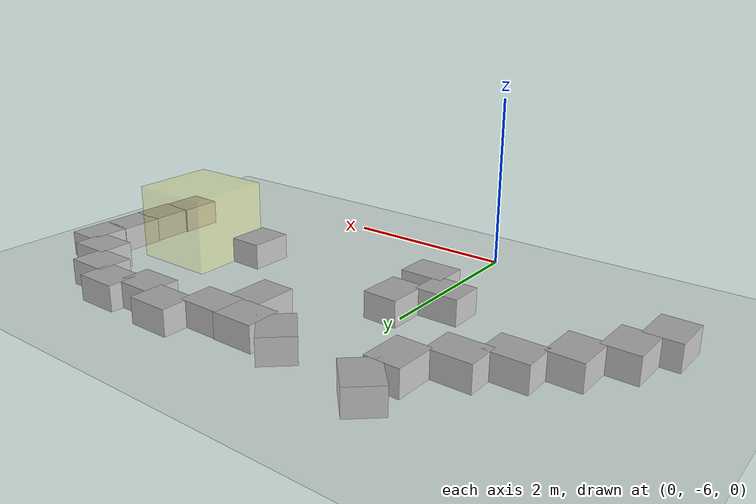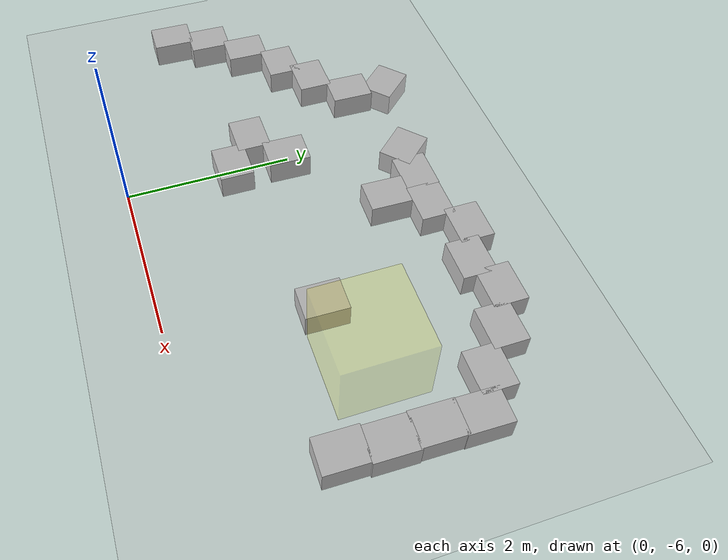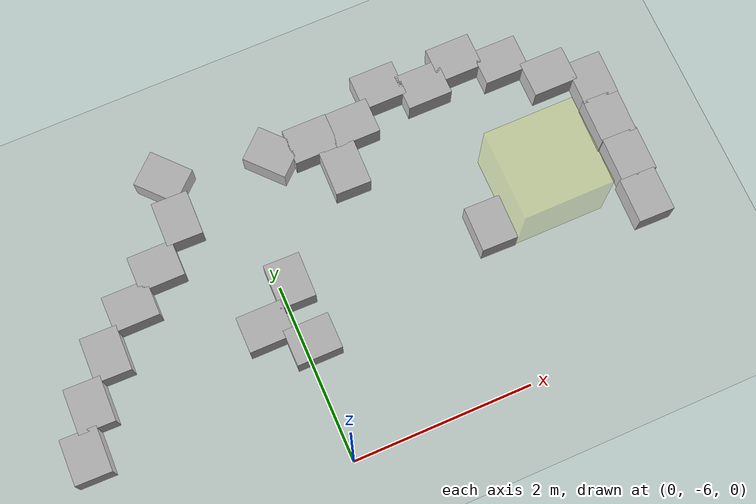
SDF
<sdf version="1.6">
 <world name="default">
  <model name="ground_plane">
   <static>1</static>
   <link name="link">
    <collision name="collision">
     <geometry><plane><normal>0 0 1</normal><size>100 100</size></plane></geometry>
     <surface>
      <contact><collide_bitmask>65535</collide_bitmask></contact>
      <friction><ode><mu>100</mu><mu2>50</mu2></ode></friction>
     </surface>
    </collision>
    <visual name="visual">
     <cast_shadows>0</cast_shadows>
     <geometry><plane><normal>0 0 1</normal><size>100 100</size></plane></geometry>
     <material>
      <script><uri>file://media/materials/scripts/gazebo.material</uri><name>Gazebo/Grey</name></script>
     </material>
    </visual>
   </link>
   <pose>0.215037 0.234206 0 0 -0 0</pose>
  </model>
  <model name="RegionEventBox_clone_0_clone">
   <static>1</static>
   <pose>3.01485 -4.05142 0 0 -0 0</pose>
   <link name="link">
    <visual name="visual">
     <transparency>0.75</transparency>
     <geometry><box><size>1 1 1.75</size></box></geometry>
     <material>
      <script><uri>file://media/materials/scripts/gazebo.material</uri><name>Gazebo/Yellow</name></script>
     </material>
    </visual>
   </link>
   <plugin name="region_event_box" filename="libRegionEventBoxPlugin.so">
    <event><name>model_in_region_event_box</name><type>inclusion</type><active>1</active></event>
   </plugin>
  </model>
  <model name="box_clone_3_clone_clone_clone_5">
   <link name="cardboard_box_clone::link">
    <inertial>
     <mass>2</mass>
     <inertia>
      <ixx>0.0416667</ixx>
      <ixy>0</ixy>
      <ixz>0</ixz>
      <iyy>0.0566667</iyy>
      <iyz>0</iyz>
      <izz>0.0683333</izz>
     </inertia>
    </inertial>
    <visual name="visual">
     <pose>0 0 -0.15 0 -0 0</pose>
     <geometry>
      <mesh><uri>model://cardboard_box/meshes/cardboard_box.dae</uri><scale>1.25932 1.00745 0.755591</scale></mesh>
     </geometry>
    </visual>
    <collision name="collision">
     <geometry><box><size>0.5 0.4 0.3</size></box></geometry>
     <surface>
      <friction>
       <ode><mu>1</mu><mu2>1</mu2><fdir1>0 0 0</fdir1><slip1>0</slip1><slip2>0</slip2></ode>
       <torsional>
        <coefficient>1</coefficient>
        <patch_radius>0</patch_radius>
        <surface_radius>0</surface_radius>
        <use_patch_radius>1</use_patch_radius>
        <ode><slip>0</slip></ode>
       </torsional>
      </friction>
      <bounce><restitution_coefficient>0</restitution_coefficient><threshold>1e+06</threshold></bounce>
      <contact>
       <collide_without_contact>0</collide_without_contact>
       <collide_without_contact_bitmask>1</collide_without_contact_bitmask>
       <collide_bitmask>1</collide_bitmask>
       <ode>
        <soft_cfm>0</soft_cfm>
        <soft_erp>0.2</soft_erp>
        <kp>1e+07</kp>
        <kd>1</kd>
        <max_vel>0.1</max_vel>
        <min_depth>0.001</min_depth>
       </ode>
       <bullet>
        <split_impulse>1</split_impulse>
        <split_impulse_penetration_threshold>-0.01</split_impulse_penetration_threshold>
        <soft_cfm>0</soft_cfm>
        <soft_erp>0.2</soft_erp>
        <kp>1e+07</kp>
        <kd>1</kd>
       </bullet>
      </contact>
     </surface>
    </collision>
   </link>
   <static>1</static>
   <pose>-0.716717 -2.94851 0.149 0 -0 1.55153</pose>
  </model>
  <model name="box_clone_3_clone_clone_clone_5_clone">
   <link name="cardboard_box_clone::link">
    <inertial>
     <mass>2</mass>
     <inertia>
      <ixx>0.0416667</ixx>
      <ixy>0</ixy>
      <ixz>0</ixz>
      <iyy>0.0566667</iyy>
      <iyz>0</iyz>
      <izz>0.0683333</izz>
     </inertia>
    </inertial>
    <visual name="visual">
     <pose>0 0 -0.15 0 -0 0</pose>
     <geometry>
      <mesh><uri>model://cardboard_box/meshes/cardboard_box.dae</uri><scale>1.25932 1.00745 0.755591</scale></mesh>
     </geometry>
    </visual>
    <collision name="collision">
     <geometry><box><size>0.5 0.4 0.3</size></box></geometry>
     <surface>
      <friction>
       <ode><mu>1</mu><mu2>1</mu2><fdir1>0 0 0</fdir1><slip1>0</slip1><slip2>0</slip2></ode>
       <torsional>
        <coefficient>1</coefficient>
        <patch_radius>0</patch_radius>
        <surface_radius>0</surface_radius>
        <use_patch_radius>1</use_patch_radius>
        <ode><slip>0</slip></ode>
       </torsional>
      </friction>
      <bounce><restitution_coefficient>0</restitution_coefficient><threshold>1e+06</threshold></bounce>
      <contact>
       <collide_without_contact>0</collide_without_contact>
       <collide_without_contact_bitmask>1</collide_without_contact_bitmask>
       <collide_bitmask>1</collide_bitmask>
       <ode>
        <soft_cfm>0</soft_cfm>
        <soft_erp>0.2</soft_erp>
        <kp>1e+07</kp>
        <kd>1</kd>
        <max_vel>0.1</max_vel>
        <min_depth>0.001</min_depth>
       </ode>
       <bullet>
        <split_impulse>1</split_impulse>
        <split_impulse_penetration_threshold>-0.01</split_impulse_penetration_threshold>
        <soft_cfm>0</soft_cfm>
        <soft_erp>0.2</soft_erp>
        <kp>1e+07</kp>
        <kd>1</kd>
       </bullet>
      </contact>
     </surface>
    </collision>
   </link>
   <static>1</static>
   <pose>0.112115 -4.04552 0.149 0 -0 1.55153</pose>
  </model>
  <model name="box_clone_1_clone">
   <link name="cardboard_box_clone::link">
    <inertial>
     <mass>2</mass>
     <inertia>
      <ixx>0.0416667</ixx>
      <ixy>0</ixy>
      <ixz>0</ixz>
      <iyy>0.0566667</iyy>
      <iyz>0</iyz>
      <izz>0.0683333</izz>
     </inertia>
    </inertial>
    <visual name="visual">
     <pose>0 0 -0.15 0 -0 0</pose>
     <geometry>
      <mesh><uri>model://cardboard_box/meshes/cardboard_box.dae</uri><scale>1.25932 1.00745 0.755591</scale></mesh>
     </geometry>
    </visual>
    <collision name="collision">
     <geometry><box><size>0.5 0.4 0.3</size></box></geometry>
     <surface>
      <friction>
       <ode><mu>1</mu><mu2>1</mu2><fdir1>0 0 0</fdir1><slip1>0</slip1><slip2>0</slip2></ode>
       <torsional>
        <coefficient>1</coefficient>
        <patch_radius>0</patch_radius>
        <surface_radius>0</surface_radius>
        <use_patch_radius>1</use_patch_radius>
        <ode><slip>0</slip></ode>
       </torsional>
      </friction>
      <bounce><restitution_coefficient>0</restitution_coefficient><threshold>1e+06</threshold></bounce>
      <contact>
       <collide_without_contact>0</collide_without_contact>
       <collide_without_contact_bitmask>1</collide_without_contact_bitmask>
       <collide_bitmask>1</collide_bitmask>
       <ode>
        <soft_cfm>0</soft_cfm>
        <soft_erp>0.2</soft_erp>
        <kp>1e+07</kp>
        <kd>1</kd>
        <max_vel>0.1</max_vel>
        <min_depth>0.001</min_depth>
       </ode>
       <bullet>
        <split_impulse>1</split_impulse>
        <split_impulse_penetration_threshold>-0.01</split_impulse_penetration_threshold>
        <soft_cfm>0</soft_cfm>
        <soft_erp>0.2</soft_erp>
        <kp>1e+07</kp>
        <kd>1</kd>
       </bullet>
      </contact>
     </surface>
    </collision>
   </link>
   <static>1</static>
   <pose>0.918792 -2.68698 0.149 0 -0 0</pose>
  </model>
  <model name="box_clone_1_clone_0">
   <link name="cardboard_box_clone::link">
    <inertial>
     <mass>2</mass>
     <inertia>
      <ixx>0.0416667</ixx>
      <ixy>0</ixy>
      <ixz>0</ixz>
      <iyy>0.0566667</iyy>
      <iyz>0</iyz>
      <izz>0.0683333</izz>
     </inertia>
    </inertial>
    <visual name="visual">
     <pose>0 0 -0.15 0 -0 0</pose>
     <geometry>
      <mesh><uri>model://cardboard_box/meshes/cardboard_box.dae</uri><scale>1.25932 1.00745 0.755591</scale></mesh>
     </geometry>
    </visual>
    <collision name="collision">
     <geometry><box><size>0.5 0.4 0.3</size></box></geometry>
     <surface>
      <friction>
       <ode><mu>1</mu><mu2>1</mu2><fdir1>0 0 0</fdir1><slip1>0</slip1><slip2>0</slip2></ode>
       <torsional>
        <coefficient>1</coefficient>
        <patch_radius>0</patch_radius>
        <surface_radius>0</surface_radius>
        <use_patch_radius>1</use_patch_radius>
        <ode><slip>0</slip></ode>
       </torsional>
      </friction>
      <bounce><restitution_coefficient>0</restitution_coefficient><threshold>1e+06</threshold></bounce>
      <contact>
       <collide_without_contact>0</collide_without_contact>
       <collide_without_contact_bitmask>1</collide_without_contact_bitmask>
       <collide_bitmask>1</collide_bitmask>
       <ode>
        <soft_cfm>0</soft_cfm>
        <soft_erp>0.2</soft_erp>
        <kp>1e+07</kp>
        <kd>1</kd>
        <max_vel>0.1</max_vel>
        <min_depth>0.001</min_depth>
       </ode>
       <bullet>
        <split_impulse>1</split_impulse>
        <split_impulse_penetration_threshold>-0.01</split_impulse_penetration_threshold>
        <soft_cfm>0</soft_cfm>
        <soft_erp>0.2</soft_erp>
        <kp>1e+07</kp>
        <kd>1</kd>
       </bullet>
      </contact>
     </surface>
    </collision>
   </link>
   <static>1</static>
   <pose>1.39196 -2.69378 0.149 0 -0 0</pose>
  </model>
  <model name="box_clone_1_clone_1">
   <link name="cardboard_box_clone::link">
    <inertial>
     <mass>2</mass>
     <inertia>
      <ixx>0.0416667</ixx>
      <ixy>0</ixy>
      <ixz>0</ixz>
      <iyy>0.0566667</iyy>
      <iyz>0</iyz>
      <izz>0.0683333</izz>
     </inertia>
    </inertial>
    <visual name="visual">
     <pose>0 0 -0.15 0 -0 0</pose>
     <geometry>
      <mesh><uri>model://cardboard_box/meshes/cardboard_box.dae</uri><scale>1.25932 1.00745 0.755591</scale></mesh>
     </geometry>
    </visual>
    <collision name="collision">
     <geometry><box><size>0.5 0.4 0.3</size></box></geometry>
     <surface>
      <friction>
       <ode><mu>1</mu><mu2>1</mu2><fdir1>0 0 0</fdir1><slip1>0</slip1><slip2>0</slip2></ode>
       <torsional>
        <coefficient>1</coefficient>
        <patch_radius>0</patch_radius>
        <surface_radius>0</surface_radius>
        <use_patch_radius>1</use_patch_radius>
        <ode><slip>0</slip></ode>
       </torsional>
      </friction>
      <bounce><restitution_coefficient>0</restitution_coefficient><threshold>1e+06</threshold></bounce>
      <contact>
       <collide_without_contact>0</collide_without_contact>
       <collide_without_contact_bitmask>1</collide_without_contact_bitmask>
       <collide_bitmask>1</collide_bitmask>
       <ode>
        <soft_cfm>0</soft_cfm>
        <soft_erp>0.2</soft_erp>
        <kp>1e+07</kp>
        <kd>1</kd>
        <max_vel>0.1</max_vel>
        <min_depth>0.001</min_depth>
       </ode>
       <bullet>
        <split_impulse>1</split_impulse>
        <split_impulse_penetration_threshold>-0.01</split_impulse_penetration_threshold>
        <soft_cfm>0</soft_cfm>
        <soft_erp>0.2</soft_erp>
        <kp>1e+07</kp>
        <kd>1</kd>
       </bullet>
      </contact>
     </surface>
    </collision>
   </link>
   <static>1</static>
   <pose>1.82358 -2.40857 0.149 0 -0 0</pose>
  </model>
  <model name="box_clone_1_clone_2">
   <link name="cardboard_box_clone::link">
    <inertial>
     <mass>2</mass>
     <inertia>
      <ixx>0.0416667</ixx>
      <ixy>0</ixy>
      <ixz>0</ixz>
      <iyy>0.0566667</iyy>
      <iyz>0</iyz>
      <izz>0.0683333</izz>
     </inertia>
    </inertial>
    <visual name="visual">
     <pose>0 0 -0.15 0 -0 0</pose>
     <geometry>
      <mesh><uri>model://cardboard_box/meshes/cardboard_box.dae</uri><scale>1.25932 1.00745 0.755591</scale></mesh>
     </geometry>
    </visual>
    <collision name="collision">
     <geometry><box><size>0.5 0.4 0.3</size></box></geometry>
     <surface>
      <friction>
       <ode><mu>1</mu><mu2>1</mu2><fdir1>0 0 0</fdir1><slip1>0</slip1><slip2>0</slip2></ode>
       <torsional>
        <coefficient>1</coefficient>
        <patch_radius>0</patch_radius>
        <surface_radius>0</surface_radius>
        <use_patch_radius>1</use_patch_radius>
        <ode><slip>0</slip></ode>
       </torsional>
      </friction>
      <bounce><restitution_coefficient>0</restitution_coefficient><threshold>1e+06</threshold></bounce>
      <contact>
       <collide_without_contact>0</collide_without_contact>
       <collide_without_contact_bitmask>1</collide_without_contact_bitmask>
       <collide_bitmask>1</collide_bitmask>
       <ode>
        <soft_cfm>0</soft_cfm>
        <soft_erp>0.2</soft_erp>
        <kp>1e+07</kp>
        <kd>1</kd>
        <max_vel>0.1</max_vel>
        <min_depth>0.001</min_depth>
       </ode>
       <bullet>
        <split_impulse>1</split_impulse>
        <split_impulse_penetration_threshold>-0.01</split_impulse_penetration_threshold>
        <soft_cfm>0</soft_cfm>
        <soft_erp>0.2</soft_erp>
        <kp>1e+07</kp>
        <kd>1</kd>
       </bullet>
      </contact>
     </surface>
    </collision>
   </link>
   <static>1</static>
   <pose>2.28024 -2.59219 0.149 0 -0 0</pose>
  </model>
  <model name="box_clone_1_clone_3">
   <link name="cardboard_box_clone::link">
    <inertial>
     <mass>2</mass>
     <inertia>
      <ixx>0.0416667</ixx>
      <ixy>0</ixy>
      <ixz>0</ixz>
      <iyy>0.0566667</iyy>
      <iyz>0</iyz>
      <izz>0.0683333</izz>
     </inertia>
    </inertial>
    <visual name="visual">
     <pose>0 0 -0.15 0 -0 0</pose>
     <geometry>
      <mesh><uri>model://cardboard_box/meshes/cardboard_box.dae</uri><scale>1.25932 1.00745 0.755591</scale></mesh>
     </geometry>
    </visual>
    <collision name="collision">
     <geometry><box><size>0.5 0.4 0.3</size></box></geometry>
     <surface>
      <friction>
       <ode><mu>1</mu><mu2>1</mu2><fdir1>0 0 0</fdir1><slip1>0</slip1><slip2>0</slip2></ode>
       <torsional>
        <coefficient>1</coefficient>
        <patch_radius>0</patch_radius>
        <surface_radius>0</surface_radius>
        <use_patch_radius>1</use_patch_radius>
        <ode><slip>0</slip></ode>
       </torsional>
      </friction>
      <bounce><restitution_coefficient>0</restitution_coefficient><threshold>1e+06</threshold></bounce>
      <contact>
       <collide_without_contact>0</collide_without_contact>
       <collide_without_contact_bitmask>1</collide_without_contact_bitmask>
       <collide_bitmask>1</collide_bitmask>
       <ode>
        <soft_cfm>0</soft_cfm>
        <soft_erp>0.2</soft_erp>
        <kp>1e+07</kp>
        <kd>1</kd>
        <max_vel>0.1</max_vel>
        <min_depth>0.001</min_depth>
       </ode>
       <bullet>
        <split_impulse>1</split_impulse>
        <split_impulse_penetration_threshold>-0.01</split_impulse_penetration_threshold>
        <soft_cfm>0</soft_cfm>
        <soft_erp>0.2</soft_erp>
        <kp>1e+07</kp>
        <kd>1</kd>
       </bullet>
      </contact>
     </surface>
    </collision>
   </link>
   <static>1</static>
   <pose>2.71488 -2.44158 0.149 0 -0 0</pose>
  </model>
  <model name="box_clone_1_clone_4">
   <link name="cardboard_box_clone::link">
    <inertial>
     <mass>2</mass>
     <inertia>
      <ixx>0.0416667</ixx>
      <ixy>0</ixy>
      <ixz>0</ixz>
      <iyy>0.0566667</iyy>
      <iyz>0</iyz>
      <izz>0.0683333</izz>
     </inertia>
    </inertial>
    <visual name="visual">
     <pose>0 0 -0.15 0 -0 0</pose>
     <geometry>
      <mesh><uri>model://cardboard_box/meshes/cardboard_box.dae</uri><scale>1.25932 1.00745 0.755591</scale></mesh>
     </geometry>
    </visual>
    <collision name="collision">
     <geometry><box><size>0.5 0.4 0.3</size></box></geometry>
     <surface>
      <friction>
       <ode><mu>1</mu><mu2>1</mu2><fdir1>0 0 0</fdir1><slip1>0</slip1><slip2>0</slip2></ode>
       <torsional>
        <coefficient>1</coefficient>
        <patch_radius>0</patch_radius>
        <surface_radius>0</surface_radius>
        <use_patch_radius>1</use_patch_radius>
        <ode><slip>0</slip></ode>
       </torsional>
      </friction>
      <bounce><restitution_coefficient>0</restitution_coefficient><threshold>1e+06</threshold></bounce>
      <contact>
       <collide_without_contact>0</collide_without_contact>
       <collide_without_contact_bitmask>1</collide_without_contact_bitmask>
       <collide_bitmask>1</collide_bitmask>
       <ode>
        <soft_cfm>0</soft_cfm>
        <soft_erp>0.2</soft_erp>
        <kp>1e+07</kp>
        <kd>1</kd>
        <max_vel>0.1</max_vel>
        <min_depth>0.001</min_depth>
       </ode>
       <bullet>
        <split_impulse>1</split_impulse>
        <split_impulse_penetration_threshold>-0.01</split_impulse_penetration_threshold>
        <soft_cfm>0</soft_cfm>
        <soft_erp>0.2</soft_erp>
        <kp>1e+07</kp>
        <kd>1</kd>
       </bullet>
      </contact>
     </surface>
    </collision>
   </link>
   <static>1</static>
   <pose>3.16773 -2.65912 0.149 0 -0 0</pose>
  </model>
  <model name="box_clone_1_clone_5">
   <link name="cardboard_box_clone::link">
    <inertial>
     <mass>2</mass>
     <inertia>
      <ixx>0.0416667</ixx>
      <ixy>0</ixy>
      <ixz>0</ixz>
      <iyy>0.0566667</iyy>
      <iyz>0</iyz>
      <izz>0.0683333</izz>
     </inertia>
    </inertial>
    <visual name="visual">
     <pose>0 0 -0.15 0 -0 0</pose>
     <geometry>
      <mesh><uri>model://cardboard_box/meshes/cardboard_box.dae</uri><scale>1.25932 1.00745 0.755591</scale></mesh>
     </geometry>
    </visual>
    <collision name="collision">
     <geometry><box><size>0.5 0.4 0.3</size></box></geometry>
     <surface>
      <friction>
       <ode><mu>1</mu><mu2>1</mu2><fdir1>0 0 0</fdir1><slip1>0</slip1><slip2>0</slip2></ode>
       <torsional>
        <coefficient>1</coefficient>
        <patch_radius>0</patch_radius>
        <surface_radius>0</surface_radius>
        <use_patch_radius>1</use_patch_radius>
        <ode><slip>0</slip></ode>
       </torsional>
      </friction>
      <bounce><restitution_coefficient>0</restitution_coefficient><threshold>1e+06</threshold></bounce>
      <contact>
       <collide_without_contact>0</collide_without_contact>
       <collide_without_contact_bitmask>1</collide_without_contact_bitmask>
       <collide_bitmask>1</collide_bitmask>
       <ode>
        <soft_cfm>0</soft_cfm>
        <soft_erp>0.2</soft_erp>
        <kp>1e+07</kp>
        <kd>1</kd>
        <max_vel>0.1</max_vel>
        <min_depth>0.001</min_depth>
       </ode>
       <bullet>
        <split_impulse>1</split_impulse>
        <split_impulse_penetration_threshold>-0.01</split_impulse_penetration_threshold>
        <soft_cfm>0</soft_cfm>
        <soft_erp>0.2</soft_erp>
        <kp>1e+07</kp>
        <kd>1</kd>
       </bullet>
      </contact>
     </surface>
    </collision>
   </link>
   <static>1</static>
   <pose>3.59171 -2.99371 0.149 0 -0 0</pose>
  </model>
  <model name="box_clone_3_clone_clone_clone_0_clone">
   <link name="cardboard_box_clone::link">
    <inertial>
     <mass>2</mass>
     <inertia>
      <ixx>0.0416667</ixx>
      <ixy>0</ixy>
      <ixz>0</ixz>
      <iyy>0.0566667</iyy>
      <iyz>0</iyz>
      <izz>0.0683333</izz>
     </inertia>
    </inertial>
    <visual name="visual">
     <pose>0 0 -0.15 0 -0 0</pose>
     <geometry>
      <mesh><uri>model://cardboard_box/meshes/cardboard_box.dae</uri><scale>1.25932 1.00745 0.755591</scale></mesh>
     </geometry>
    </visual>
    <collision name="collision">
     <geometry><box><size>0.5 0.4 0.3</size></box></geometry>
     <surface>
      <friction>
       <ode><mu>1</mu><mu2>1</mu2><fdir1>0 0 0</fdir1><slip1>0</slip1><slip2>0</slip2></ode>
       <torsional>
        <coefficient>1</coefficient>
        <patch_radius>0</patch_radius>
        <surface_radius>0</surface_radius>
        <use_patch_radius>1</use_patch_radius>
        <ode><slip>0</slip></ode>
       </torsional>
      </friction>
      <bounce><restitution_coefficient>0</restitution_coefficient><threshold>1e+06</threshold></bounce>
      <contact>
       <collide_without_contact>0</collide_without_contact>
       <collide_without_contact_bitmask>1</collide_without_contact_bitmask>
       <collide_bitmask>1</collide_bitmask>
       <ode>
        <soft_cfm>0</soft_cfm>
        <soft_erp>0.2</soft_erp>
        <kp>1e+07</kp>
        <kd>1</kd>
        <max_vel>0.1</max_vel>
        <min_depth>0.001</min_depth>
       </ode>
       <bullet>
        <split_impulse>1</split_impulse>
        <split_impulse_penetration_threshold>-0.01</split_impulse_penetration_threshold>
        <soft_cfm>0</soft_cfm>
        <soft_erp>0.2</soft_erp>
        <kp>1e+07</kp>
        <kd>1</kd>
       </bullet>
      </contact>
     </surface>
    </collision>
   </link>
   <static>1</static>
   <pose>3.98835 -3.24578 0.149 0 -0 1.55153</pose>
  </model>
  <model name="box_clone_3_clone_clone_clone_0_clone_0">
   <link name="cardboard_box_clone::link">
    <inertial>
     <mass>2</mass>
     <inertia>
      <ixx>0.0416667</ixx>
      <ixy>0</ixy>
      <ixz>0</ixz>
      <iyy>0.0566667</iyy>
      <iyz>0</iyz>
      <izz>0.0683333</izz>
     </inertia>
    </inertial>
    <visual name="visual">
     <pose>0 0 -0.15 0 -0 0</pose>
     <geometry>
      <mesh><uri>model://cardboard_box/meshes/cardboard_box.dae</uri><scale>1.25932 1.00745 0.755591</scale></mesh>
     </geometry>
    </visual>
    <collision name="collision">
     <geometry><box><size>0.5 0.4 0.3</size></box></geometry>
     <surface>
      <friction>
       <ode><mu>1</mu><mu2>1</mu2><fdir1>0 0 0</fdir1><slip1>0</slip1><slip2>0</slip2></ode>
       <torsional>
        <coefficient>1</coefficient>
        <patch_radius>0</patch_radius>
        <surface_radius>0</surface_radius>
        <use_patch_radius>1</use_patch_radius>
        <ode><slip>0</slip></ode>
       </torsional>
      </friction>
      <bounce><restitution_coefficient>0</restitution_coefficient><threshold>1e+06</threshold></bounce>
      <contact>
       <collide_without_contact>0</collide_without_contact>
       <collide_without_contact_bitmask>1</collide_without_contact_bitmask>
       <collide_bitmask>1</collide_bitmask>
       <ode>
        <soft_cfm>0</soft_cfm>
        <soft_erp>0.2</soft_erp>
        <kp>1e+07</kp>
        <kd>1</kd>
        <max_vel>0.1</max_vel>
        <min_depth>0.001</min_depth>
       </ode>
       <bullet>
        <split_impulse>1</split_impulse>
        <split_impulse_penetration_threshold>-0.01</split_impulse_penetration_threshold>
        <soft_cfm>0</soft_cfm>
        <soft_erp>0.2</soft_erp>
        <kp>1e+07</kp>
        <kd>1</kd>
       </bullet>
      </contact>
     </surface>
    </collision>
   </link>
   <static>1</static>
   <pose>3.97273 -3.71542 0.149 0 -0 1.55153</pose>
  </model>
  <model name="box_clone_3_clone_clone_clone_0_clone_1">
   <link name="cardboard_box_clone::link">
    <inertial>
     <mass>2</mass>
     <inertia>
      <ixx>0.0416667</ixx>
      <ixy>0</ixy>
      <ixz>0</ixz>
      <iyy>0.0566667</iyy>
      <iyz>0</iyz>
      <izz>0.0683333</izz>
     </inertia>
    </inertial>
    <visual name="visual">
     <pose>0 0 -0.15 0 -0 0</pose>
     <geometry>
      <mesh><uri>model://cardboard_box/meshes/cardboard_box.dae</uri><scale>1.25932 1.00745 0.755591</scale></mesh>
     </geometry>
    </visual>
    <collision name="collision">
     <geometry><box><size>0.5 0.4 0.3</size></box></geometry>
     <surface>
      <friction>
       <ode><mu>1</mu><mu2>1</mu2><fdir1>0 0 0</fdir1><slip1>0</slip1><slip2>0</slip2></ode>
       <torsional>
        <coefficient>1</coefficient>
        <patch_radius>0</patch_radius>
        <surface_radius>0</surface_radius>
        <use_patch_radius>1</use_patch_radius>
        <ode><slip>0</slip></ode>
       </torsional>
      </friction>
      <bounce><restitution_coefficient>0</restitution_coefficient><threshold>1e+06</threshold></bounce>
      <contact>
       <collide_without_contact>0</collide_without_contact>
       <collide_without_contact_bitmask>1</collide_without_contact_bitmask>
       <collide_bitmask>1</collide_bitmask>
       <ode>
        <soft_cfm>0</soft_cfm>
        <soft_erp>0.2</soft_erp>
        <kp>1e+07</kp>
        <kd>1</kd>
        <max_vel>0.1</max_vel>
        <min_depth>0.001</min_depth>
       </ode>
       <bullet>
        <split_impulse>1</split_impulse>
        <split_impulse_penetration_threshold>-0.01</split_impulse_penetration_threshold>
        <soft_cfm>0</soft_cfm>
        <soft_erp>0.2</soft_erp>
        <kp>1e+07</kp>
        <kd>1</kd>
       </bullet>
      </contact>
     </surface>
    </collision>
   </link>
   <static>1</static>
   <pose>3.97417 -4.19616 0.149 0 -0 1.55153</pose>
  </model>
  <model name="box_clone_3_clone_clone_clone_0_clone_2">
   <link name="cardboard_box_clone::link">
    <inertial>
     <mass>2</mass>
     <inertia>
      <ixx>0.0416667</ixx>
      <ixy>0</ixy>
      <ixz>0</ixz>
      <iyy>0.0566667</iyy>
      <iyz>0</iyz>
      <izz>0.0683333</izz>
     </inertia>
    </inertial>
    <visual name="visual">
     <pose>0 0 -0.15 0 -0 0</pose>
     <geometry>
      <mesh><uri>model://cardboard_box/meshes/cardboard_box.dae</uri><scale>1.25932 1.00745 0.755591</scale></mesh>
     </geometry>
    </visual>
    <collision name="collision">
     <geometry><box><size>0.5 0.4 0.3</size></box></geometry>
     <surface>
      <friction>
       <ode><mu>1</mu><mu2>1</mu2><fdir1>0 0 0</fdir1><slip1>0</slip1><slip2>0</slip2></ode>
       <torsional>
        <coefficient>1</coefficient>
        <patch_radius>0</patch_radius>
        <surface_radius>0</surface_radius>
        <use_patch_radius>1</use_patch_radius>
        <ode><slip>0</slip></ode>
       </torsional>
      </friction>
      <bounce><restitution_coefficient>0</restitution_coefficient><threshold>1e+06</threshold></bounce>
      <contact>
       <collide_without_contact>0</collide_without_contact>
       <collide_without_contact_bitmask>1</collide_without_contact_bitmask>
       <collide_bitmask>1</collide_bitmask>
       <ode>
        <soft_cfm>0</soft_cfm>
        <soft_erp>0.2</soft_erp>
        <kp>1e+07</kp>
        <kd>1</kd>
        <max_vel>0.1</max_vel>
        <min_depth>0.001</min_depth>
       </ode>
       <bullet>
        <split_impulse>1</split_impulse>
        <split_impulse_penetration_threshold>-0.01</split_impulse_penetration_threshold>
        <soft_cfm>0</soft_cfm>
        <soft_erp>0.2</soft_erp>
        <kp>1e+07</kp>
        <kd>1</kd>
       </bullet>
      </contact>
     </surface>
    </collision>
   </link>
   <static>1</static>
   <pose>3.94335 -4.67785 0.149 0 -0 1.55153</pose>
  </model>
  <model name="box_clone_3_clone_clone_clone_0_clone_3">
   <link name="cardboard_box_clone::link">
    <inertial>
     <mass>2</mass>
     <inertia>
      <ixx>0.0416667</ixx>
      <ixy>0</ixy>
      <ixz>0</ixz>
      <iyy>0.0566667</iyy>
      <iyz>0</iyz>
      <izz>0.0683333</izz>
     </inertia>
    </inertial>
    <visual name="visual">
     <pose>0 0 -0.15 0 -0 0</pose>
     <geometry>
      <mesh><uri>model://cardboard_box/meshes/cardboard_box.dae</uri><scale>1.25932 1.00745 0.755591</scale></mesh>
     </geometry>
    </visual>
    <collision name="collision">
     <geometry><box><size>0.5 0.4 0.3</size></box></geometry>
     <surface>
      <friction>
       <ode><mu>1</mu><mu2>1</mu2><fdir1>0 0 0</fdir1><slip1>0</slip1><slip2>0</slip2></ode>
       <torsional>
        <coefficient>1</coefficient>
        <patch_radius>0</patch_radius>
        <surface_radius>0</surface_radius>
        <use_patch_radius>1</use_patch_radius>
        <ode><slip>0</slip></ode>
       </torsional>
      </friction>
      <bounce><restitution_coefficient>0</restitution_coefficient><threshold>1e+06</threshold></bounce>
      <contact>
       <collide_without_contact>0</collide_without_contact>
       <collide_without_contact_bitmask>1</collide_without_contact_bitmask>
       <collide_bitmask>1</collide_bitmask>
       <ode>
        <soft_cfm>0</soft_cfm>
        <soft_erp>0.2</soft_erp>
        <kp>1e+07</kp>
        <kd>1</kd>
        <max_vel>0.1</max_vel>
        <min_depth>0.001</min_depth>
       </ode>
       <bullet>
        <split_impulse>1</split_impulse>
        <split_impulse_penetration_threshold>-0.01</split_impulse_penetration_threshold>
        <soft_cfm>0</soft_cfm>
        <soft_erp>0.2</soft_erp>
        <kp>1e+07</kp>
        <kd>1</kd>
       </bullet>
      </contact>
     </surface>
    </collision>
   </link>
   <static>1</static>
   <pose>2.29607 -4.30964 0.149 0 -0 1.55153</pose>
  </model>
  <model name="box_clone_10">
   <link name="cardboard_box_clone::link">
    <inertial>
     <mass>2</mass>
     <inertia>
      <ixx>0.0416667</ixx>
      <ixy>0</ixy>
      <ixz>0</ixz>
      <iyy>0.0566667</iyy>
      <iyz>0</iyz>
      <izz>0.0683333</izz>
     </inertia>
    </inertial>
    <visual name="visual">
     <pose>0 0 -0.15 0 -0 0</pose>
     <geometry>
      <mesh><uri>model://cardboard_box/meshes/cardboard_box.dae</uri><scale>1.25932 1.00745 0.755591</scale></mesh>
     </geometry>
    </visual>
    <collision name="collision">
     <geometry><box><size>0.5 0.4 0.3</size></box></geometry>
     <surface>
      <friction>
       <ode><mu>1</mu><mu2>1</mu2><fdir1>0 0 0</fdir1><slip1>0</slip1><slip2>0</slip2></ode>
       <torsional>
        <coefficient>1</coefficient>
        <patch_radius>0</patch_radius>
        <surface_radius>0</surface_radius>
        <use_patch_radius>1</use_patch_radius>
        <ode><slip>0</slip></ode>
       </torsional>
      </friction>
      <bounce><restitution_coefficient>0</restitution_coefficient><threshold>1e+06</threshold></bounce>
      <contact>
       <collide_without_contact>0</collide_without_contact>
       <collide_without_contact_bitmask>1</collide_without_contact_bitmask>
       <collide_bitmask>1</collide_bitmask>
       <ode>
        <soft_cfm>0</soft_cfm>
        <soft_erp>0.2</soft_erp>
        <kp>1e+07</kp>
        <kd>1</kd>
        <max_vel>0.1</max_vel>
        <min_depth>0.001</min_depth>
       </ode>
       <bullet>
        <split_impulse>1</split_impulse>
        <split_impulse_penetration_threshold>-0.01</split_impulse_penetration_threshold>
        <soft_cfm>0</soft_cfm>
        <soft_erp>0.2</soft_erp>
        <kp>1e+07</kp>
        <kd>1</kd>
       </bullet>
      </contact>
     </surface>
    </collision>
   </link>
   <static>1</static>
   <pose>-1.10681 -3.34727 0.149 0 -0 0</pose>
  </model>
  <model name="box_clone_11">
   <link name="cardboard_box_clone::link">
    <inertial>
     <mass>2</mass>
     <inertia>
      <ixx>0.0416667</ixx>
      <ixy>0</ixy>
      <ixz>0</ixz>
      <iyy>0.0566667</iyy>
      <iyz>0</iyz>
      <izz>0.0683333</izz>
     </inertia>
    </inertial>
    <visual name="visual">
     <pose>0 0 -0.15 0 -0 0</pose>
     <geometry>
      <mesh><uri>model://cardboard_box/meshes/cardboard_box.dae</uri><scale>1.25932 1.00745 0.755591</scale></mesh>
     </geometry>
    </visual>
    <collision name="collision">
     <geometry><box><size>0.5 0.4 0.3</size></box></geometry>
     <surface>
      <friction>
       <ode><mu>1</mu><mu2>1</mu2><fdir1>0 0 0</fdir1><slip1>0</slip1><slip2>0</slip2></ode>
       <torsional>
        <coefficient>1</coefficient>
        <patch_radius>0</patch_radius>
        <surface_radius>0</surface_radius>
        <use_patch_radius>1</use_patch_radius>
        <ode><slip>0</slip></ode>
       </torsional>
      </friction>
      <bounce><restitution_coefficient>0</restitution_coefficient><threshold>1e+06</threshold></bounce>
      <contact>
       <collide_without_contact>0</collide_without_contact>
       <collide_without_contact_bitmask>1</collide_without_contact_bitmask>
       <collide_bitmask>1</collide_bitmask>
       <ode>
        <soft_cfm>0</soft_cfm>
        <soft_erp>0.2</soft_erp>
        <kp>1e+07</kp>
        <kd>1</kd>
        <max_vel>0.1</max_vel>
        <min_depth>0.001</min_depth>
       </ode>
       <bullet>
        <split_impulse>1</split_impulse>
        <split_impulse_penetration_threshold>-0.01</split_impulse_penetration_threshold>
        <soft_cfm>0</soft_cfm>
        <soft_erp>0.2</soft_erp>
        <kp>1e+07</kp>
        <kd>1</kd>
       </bullet>
      </contact>
     </surface>
    </collision>
   </link>
   <static>1</static>
   <pose>-1.49999 -3.64286 0.149 0 -0 0</pose>
  </model>
  <model name="box_clone_3_clone_clone_0">
   <link name="cardboard_box_clone::link">
    <inertial>
     <mass>2</mass>
     <inertia>
      <ixx>0.0416667</ixx>
      <ixy>0</ixy>
      <ixz>0</ixz>
      <iyy>0.0566667</iyy>
      <iyz>0</iyz>
      <izz>0.0683333</izz>
     </inertia>
    </inertial>
    <visual name="visual">
     <pose>0 0 -0.15 0 -0 0</pose>
     <geometry>
      <mesh><uri>model://cardboard_box/meshes/cardboard_box.dae</uri><scale>1.25932 1.00745 0.755591</scale></mesh>
     </geometry>
    </visual>
    <collision name="collision">
     <geometry><box><size>0.5 0.4 0.3</size></box></geometry>
     <surface>
      <friction>
       <ode><mu>1</mu><mu2>1</mu2><fdir1>0 0 0</fdir1><slip1>0</slip1><slip2>0</slip2></ode>
       <torsional>
        <coefficient>1</coefficient>
        <patch_radius>0</patch_radius>
        <surface_radius>0</surface_radius>
        <use_patch_radius>1</use_patch_radius>
        <ode><slip>0</slip></ode>
       </torsional>
      </friction>
      <bounce><restitution_coefficient>0</restitution_coefficient><threshold>1e+06</threshold></bounce>
      <contact>
       <collide_without_contact>0</collide_without_contact>
       <collide_without_contact_bitmask>1</collide_without_contact_bitmask>
       <collide_bitmask>1</collide_bitmask>
       <ode>
        <soft_cfm>0</soft_cfm>
        <soft_erp>0.2</soft_erp>
        <kp>1e+07</kp>
        <kd>1</kd>
        <max_vel>0.1</max_vel>
        <min_depth>0.001</min_depth>
       </ode>
       <bullet>
        <split_impulse>1</split_impulse>
        <split_impulse_penetration_threshold>-0.01</split_impulse_penetration_threshold>
        <soft_cfm>0</soft_cfm>
        <soft_erp>0.2</soft_erp>
        <kp>1e+07</kp>
        <kd>1</kd>
       </bullet>
      </contact>
     </surface>
    </collision>
   </link>
   <static>1</static>
   <pose>-1.91359 -4.01674 0.149 0 -0 1.55153</pose>
  </model>
  <model name="box_clone_3_clone_clone_1">
   <link name="cardboard_box_clone::link">
    <inertial>
     <mass>2</mass>
     <inertia>
      <ixx>0.0416667</ixx>
      <ixy>0</ixy>
      <ixz>0</ixz>
      <iyy>0.0566667</iyy>
      <iyz>0</iyz>
      <izz>0.0683333</izz>
     </inertia>
    </inertial>
    <visual name="visual">
     <pose>0 0 -0.15 0 -0 0</pose>
     <geometry>
      <mesh><uri>model://cardboard_box/meshes/cardboard_box.dae</uri><scale>1.25932 1.00745 0.755591</scale></mesh>
     </geometry>
    </visual>
    <collision name="collision">
     <geometry><box><size>0.5 0.4 0.3</size></box></geometry>
     <surface>
      <friction>
       <ode><mu>1</mu><mu2>1</mu2><fdir1>0 0 0</fdir1><slip1>0</slip1><slip2>0</slip2></ode>
       <torsional>
        <coefficient>1</coefficient>
        <patch_radius>0</patch_radius>
        <surface_radius>0</surface_radius>
        <use_patch_radius>1</use_patch_radius>
        <ode><slip>0</slip></ode>
       </torsional>
      </friction>
      <bounce><restitution_coefficient>0</restitution_coefficient><threshold>1e+06</threshold></bounce>
      <contact>
       <collide_without_contact>0</collide_without_contact>
       <collide_without_contact_bitmask>1</collide_without_contact_bitmask>
       <collide_bitmask>1</collide_bitmask>
       <ode>
        <soft_cfm>0</soft_cfm>
        <soft_erp>0.2</soft_erp>
        <kp>1e+07</kp>
        <kd>1</kd>
        <max_vel>0.1</max_vel>
        <min_depth>0.001</min_depth>
       </ode>
       <bullet>
        <split_impulse>1</split_impulse>
        <split_impulse_penetration_threshold>-0.01</split_impulse_penetration_threshold>
        <soft_cfm>0</soft_cfm>
        <soft_erp>0.2</soft_erp>
        <kp>1e+07</kp>
        <kd>1</kd>
       </bullet>
      </contact>
     </surface>
    </collision>
   </link>
   <static>1</static>
   <pose>-2.2484 -4.44625 0.149 0 -0 1.55153</pose>
  </model>
  <model name="box_clone_3_clone_clone_2">
   <link name="cardboard_box_clone::link">
    <inertial>
     <mass>2</mass>
     <inertia>
      <ixx>0.0416667</ixx>
      <ixy>0</ixy>
      <ixz>0</ixz>
      <iyy>0.0566667</iyy>
      <iyz>0</iyz>
      <izz>0.0683333</izz>
     </inertia>
    </inertial>
    <visual name="visual">
     <pose>0 0 -0.15 0 -0 0</pose>
     <geometry>
      <mesh><uri>model://cardboard_box/meshes/cardboard_box.dae</uri><scale>1.25932 1.00745 0.755591</scale></mesh>
     </geometry>
    </visual>
    <collision name="collision">
     <geometry><box><size>0.5 0.4 0.3</size></box></geometry>
     <surface>
      <friction>
       <ode><mu>1</mu><mu2>1</mu2><fdir1>0 0 0</fdir1><slip1>0</slip1><slip2>0</slip2></ode>
       <torsional>
        <coefficient>1</coefficient>
        <patch_radius>0</patch_radius>
        <surface_radius>0</surface_radius>
        <use_patch_radius>1</use_patch_radius>
        <ode><slip>0</slip></ode>
       </torsional>
      </friction>
      <bounce><restitution_coefficient>0</restitution_coefficient><threshold>1e+06</threshold></bounce>
      <contact>
       <collide_without_contact>0</collide_without_contact>
       <collide_without_contact_bitmask>1</collide_without_contact_bitmask>
       <collide_bitmask>1</collide_bitmask>
       <ode>
        <soft_cfm>0</soft_cfm>
        <soft_erp>0.2</soft_erp>
        <kp>1e+07</kp>
        <kd>1</kd>
        <max_vel>0.1</max_vel>
        <min_depth>0.001</min_depth>
       </ode>
       <bullet>
        <split_impulse>1</split_impulse>
        <split_impulse_penetration_threshold>-0.01</split_impulse_penetration_threshold>
        <soft_cfm>0</soft_cfm>
        <soft_erp>0.2</soft_erp>
        <kp>1e+07</kp>
        <kd>1</kd>
       </bullet>
      </contact>
     </surface>
    </collision>
   </link>
   <static>1</static>
   <pose>-2.45755 -4.91013 0.149 0 -0 1.55153</pose>
  </model>
  <model name="box_clone_3_clone_clone_clone_3_clone_clone">
   <link name="cardboard_box_clone::link">
    <inertial>
     <mass>2</mass>
     <inertia>
      <ixx>0.0416667</ixx>
      <ixy>0</ixy>
      <ixz>0</ixz>
      <iyy>0.0566667</iyy>
      <iyz>0</iyz>
      <izz>0.0683333</izz>
     </inertia>
    </inertial>
    <visual name="visual">
     <pose>0 0 -0.15 0 -0 0</pose>
     <geometry>
      <mesh><uri>model://cardboard_box/meshes/cardboard_box.dae</uri><scale>1.25932 1.00745 0.755591</scale></mesh>
     </geometry>
    </visual>
    <collision name="collision">
     <geometry><box><size>0.5 0.4 0.3</size></box></geometry>
     <surface>
      <friction>
       <ode><mu>1</mu><mu2>1</mu2><fdir1>0 0 0</fdir1><slip1>0</slip1><slip2>0</slip2></ode>
       <torsional>
        <coefficient>1</coefficient>
        <patch_radius>0</patch_radius>
        <surface_radius>0</surface_radius>
        <use_patch_radius>1</use_patch_radius>
        <ode><slip>0</slip></ode>
       </torsional>
      </friction>
      <bounce><restitution_coefficient>0</restitution_coefficient><threshold>1e+06</threshold></bounce>
      <contact>
       <collide_without_contact>0</collide_without_contact>
       <collide_without_contact_bitmask>1</collide_without_contact_bitmask>
       <collide_bitmask>1</collide_bitmask>
       <ode>
        <soft_cfm>0</soft_cfm>
        <soft_erp>0.2</soft_erp>
        <kp>1e+07</kp>
        <kd>1</kd>
        <max_vel>0.1</max_vel>
        <min_depth>0.001</min_depth>
       </ode>
       <bullet>
        <split_impulse>1</split_impulse>
        <split_impulse_penetration_threshold>-0.01</split_impulse_penetration_threshold>
        <soft_cfm>0</soft_cfm>
        <soft_erp>0.2</soft_erp>
        <kp>1e+07</kp>
        <kd>1</kd>
       </bullet>
      </contact>
     </surface>
    </collision>
   </link>
   <static>1</static>
   <pose>0.479754 -2.65819 0.149 0 -0 2.31083</pose>
  </model>
  <model name="box_clone_3_clone_clone_clone_3_clone_clone_clone">
   <link name="cardboard_box_clone::link">
    <inertial>
     <mass>2</mass>
     <inertia>
      <ixx>0.0416667</ixx>
      <ixy>0</ixy>
      <ixz>0</ixz>
      <iyy>0.0566667</iyy>
      <iyz>0</iyz>
      <izz>0.0683333</izz>
     </inertia>
    </inertial>
    <visual name="visual">
     <pose>0 0 -0.15 0 -0 0</pose>
     <geometry>
      <mesh><uri>model://cardboard_box/meshes/cardboard_box.dae</uri><scale>1.25932 1.00745 0.755591</scale></mesh>
     </geometry>
    </visual>
    <collision name="collision">
     <geometry><box><size>0.5 0.4 0.3</size></box></geometry>
     <surface>
      <friction>
       <ode><mu>1</mu><mu2>1</mu2><fdir1>0 0 0</fdir1><slip1>0</slip1><slip2>0</slip2></ode>
       <torsional>
        <coefficient>1</coefficient>
        <patch_radius>0</patch_radius>
        <surface_radius>0</surface_radius>
        <use_patch_radius>1</use_patch_radius>
        <ode><slip>0</slip></ode>
       </torsional>
      </friction>
      <bounce><restitution_coefficient>0</restitution_coefficient><threshold>1e+06</threshold></bounce>
      <contact>
       <collide_without_contact>0</collide_without_contact>
       <collide_without_contact_bitmask>1</collide_without_contact_bitmask>
       <collide_bitmask>1</collide_bitmask>
       <ode>
        <soft_cfm>0</soft_cfm>
        <soft_erp>0.2</soft_erp>
        <kp>1e+07</kp>
        <kd>1</kd>
        <max_vel>0.1</max_vel>
        <min_depth>0.001</min_depth>
       </ode>
       <bullet>
        <split_impulse>1</split_impulse>
        <split_impulse_penetration_threshold>-0.01</split_impulse_penetration_threshold>
        <soft_cfm>0</soft_cfm>
        <soft_erp>0.2</soft_erp>
        <kp>1e+07</kp>
        <kd>1</kd>
       </bullet>
      </contact>
     </surface>
    </collision>
   </link>
   <static>1</static>
   <pose>-0.685924 -2.46282 0.149 0 -0 2.31083</pose>
  </model>
  <model name="box_clone_29">
   <link name="cardboard_box_clone::link">
    <inertial>
     <mass>2</mass>
     <inertia>
      <ixx>0.0416667</ixx>
      <ixy>0</ixy>
      <ixz>0</ixz>
      <iyy>0.0566667</iyy>
      <iyz>0</iyz>
      <izz>0.0683333</izz>
     </inertia>
    </inertial>
    <visual name="visual">
     <pose>0 0 -0.15 0 -0 0</pose>
     <geometry>
      <mesh><uri>model://cardboard_box/meshes/cardboard_box.dae</uri><scale>1.25932 1.00745 0.755591</scale></mesh>
     </geometry>
    </visual>
    <collision name="collision">
     <geometry><box><size>0.5 0.4 0.3</size></box></geometry>
     <surface>
      <friction>
       <ode><mu>1</mu><mu2>1</mu2><fdir1>0 0 0</fdir1><slip1>0</slip1><slip2>0</slip2></ode>
       <torsional>
        <coefficient>1</coefficient>
        <patch_radius>0</patch_radius>
        <surface_radius>0</surface_radius>
        <use_patch_radius>1</use_patch_radius>
        <ode><slip>0</slip></ode>
       </torsional>
      </friction>
      <bounce><restitution_coefficient>0</restitution_coefficient><threshold>1e+06</threshold></bounce>
      <contact>
       <collide_without_contact>0</collide_without_contact>
       <collide_without_contact_bitmask>1</collide_without_contact_bitmask>
       <collide_bitmask>1</collide_bitmask>
       <ode>
        <soft_cfm>0</soft_cfm>
        <soft_erp>0.2</soft_erp>
        <kp>1e+07</kp>
        <kd>1</kd>
        <max_vel>0.1</max_vel>
        <min_depth>0.001</min_depth>
       </ode>
       <bullet>
        <split_impulse>1</split_impulse>
        <split_impulse_penetration_threshold>-0.01</split_impulse_penetration_threshold>
        <soft_cfm>0</soft_cfm>
        <soft_erp>0.2</soft_erp>
        <kp>1e+07</kp>
        <kd>1</kd>
       </bullet>
      </contact>
     </surface>
    </collision>
   </link>
   <static>1</static>
   <pose>-0.301458 -4.39542 0.149 0 -0 0</pose>
  </model>
  <model name="box_clone_3_clone_clone_13">
   <link name="cardboard_box_clone::link">
    <inertial>
     <mass>2</mass>
     <inertia>
      <ixx>0.0416667</ixx>
      <ixy>0</ixy>
      <ixz>0</ixz>
      <iyy>0.0566667</iyy>
      <iyz>0</iyz>
      <izz>0.0683333</izz>
     </inertia>
    </inertial>
    <visual name="visual">
     <pose>0 0 -0.15 0 -0 0</pose>
     <geometry>
      <mesh><uri>model://cardboard_box/meshes/cardboard_box.dae</uri><scale>1.25932 1.00745 0.755591</scale></mesh>
     </geometry>
    </visual>
    <collision name="collision">
     <geometry><box><size>0.5 0.4 0.3</size></box></geometry>
     <surface>
      <friction>
       <ode><mu>1</mu><mu2>1</mu2><fdir1>0 0 0</fdir1><slip1>0</slip1><slip2>0</slip2></ode>
       <torsional>
        <coefficient>1</coefficient>
        <patch_radius>0</patch_radius>
        <surface_radius>0</surface_radius>
        <use_patch_radius>1</use_patch_radius>
        <ode><slip>0</slip></ode>
       </torsional>
      </friction>
      <bounce><restitution_coefficient>0</restitution_coefficient><threshold>1e+06</threshold></bounce>
      <contact>
       <collide_without_contact>0</collide_without_contact>
       <collide_without_contact_bitmask>1</collide_without_contact_bitmask>
       <collide_bitmask>1</collide_bitmask>
       <ode>
        <soft_cfm>0</soft_cfm>
        <soft_erp>0.2</soft_erp>
        <kp>1e+07</kp>
        <kd>1</kd>
        <max_vel>0.1</max_vel>
        <min_depth>0.001</min_depth>
       </ode>
       <bullet>
        <split_impulse>1</split_impulse>
        <split_impulse_penetration_threshold>-0.01</split_impulse_penetration_threshold>
        <soft_cfm>0</soft_cfm>
        <soft_erp>0.2</soft_erp>
        <kp>1e+07</kp>
        <kd>1</kd>
       </bullet>
      </contact>
     </surface>
    </collision>
   </link>
   <static>1</static>
   <pose>1.13091 -3.13033 0.149 0 -0 1.55153</pose>
  </model>
  <model name="box_clone_32_clone_0">
   <link name="cardboard_box_clone::link">
    <inertial>
     <mass>2</mass>
     <inertia>
      <ixx>0.0416667</ixx>
      <ixy>0</ixy>
      <ixz>0</ixz>
      <iyy>0.0566667</iyy>
      <iyz>0</iyz>
      <izz>0.0683333</izz>
     </inertia>
    </inertial>
    <visual name="visual">
     <pose>0 0 -0.15 0 -0 0</pose>
     <geometry>
      <mesh><uri>model://cardboard_box/meshes/cardboard_box.dae</uri><scale>1.25932 1.00745 0.755591</scale></mesh>
     </geometry>
    </visual>
    <collision name="collision">
     <geometry><box><size>0.5 0.4 0.3</size></box></geometry>
     <surface>
      <friction>
       <ode><mu>1</mu><mu2>1</mu2><fdir1>0 0 0</fdir1><slip1>0</slip1><slip2>0</slip2></ode>
       <torsional>
        <coefficient>1</coefficient>
        <patch_radius>0</patch_radius>
        <surface_radius>0</surface_radius>
        <use_patch_radius>1</use_patch_radius>
        <ode><slip>0</slip></ode>
       </torsional>
      </friction>
      <bounce><restitution_coefficient>0</restitution_coefficient><threshold>1e+06</threshold></bounce>
      <contact>
       <collide_without_contact>0</collide_without_contact>
       <collide_without_contact_bitmask>1</collide_without_contact_bitmask>
       <collide_bitmask>1</collide_bitmask>
       <ode>
        <soft_cfm>0</soft_cfm>
        <soft_erp>0.2</soft_erp>
        <kp>1e+07</kp>
        <kd>1</kd>
        <max_vel>0.1</max_vel>
        <min_depth>0.001</min_depth>
       </ode>
       <bullet>
        <split_impulse>1</split_impulse>
        <split_impulse_penetration_threshold>-0.01</split_impulse_penetration_threshold>
        <soft_cfm>0</soft_cfm>
        <soft_erp>0.2</soft_erp>
        <kp>1e+07</kp>
        <kd>1</kd>
       </bullet>
      </contact>
     </surface>
    </collision>
   </link>
   <static>1</static>
   <pose>0.094898 -4.71346 0.149 0 -0 0</pose>
  </model>
 </world>
</sdf>
